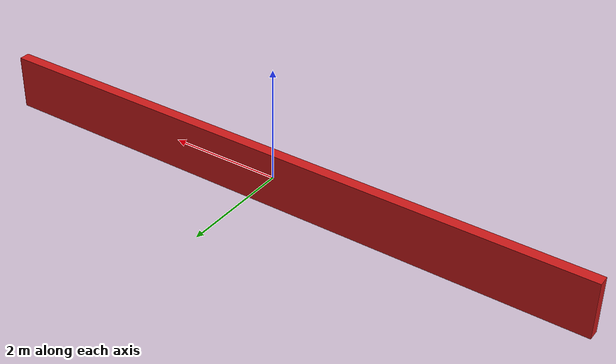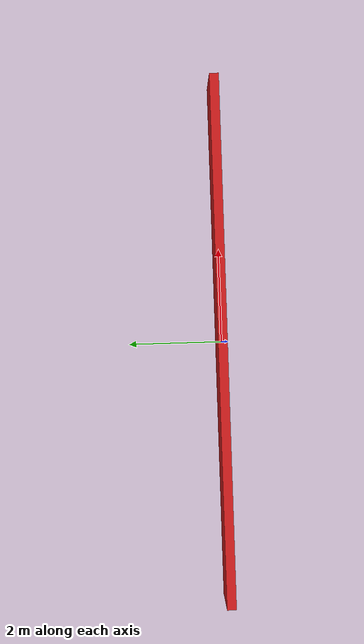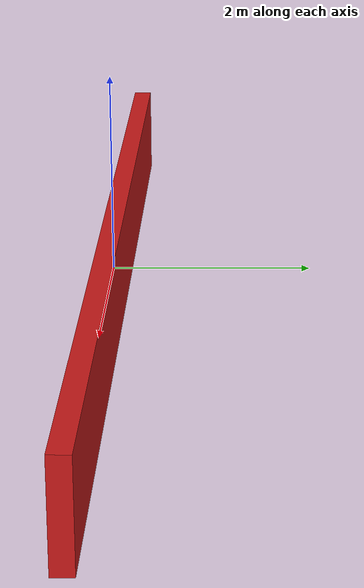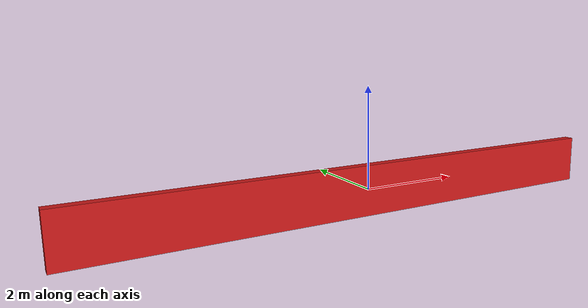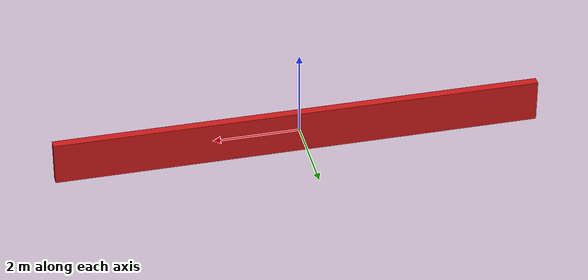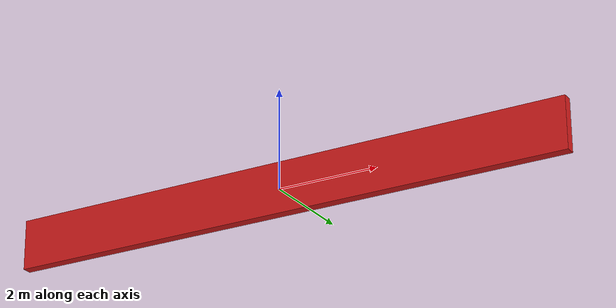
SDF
<?xml version="1.0"?>
<sdf version="1.9">
  <model name="phase10_task5_blocking_wall">
    <static>true</static>
    <link name="link">
      <collision name="collision">
        <geometry><box><size>11.32 0.20 1.00</size></box></geometry>
      </collision>
      <visual name="visual">
        <geometry><box><size>11.32 0.20 1.00</size></box></geometry>
        <material><diffuse>0.80 0.10 0.10 1</diffuse></material>
      </visual>
    </link>
  </model>
</sdf>
